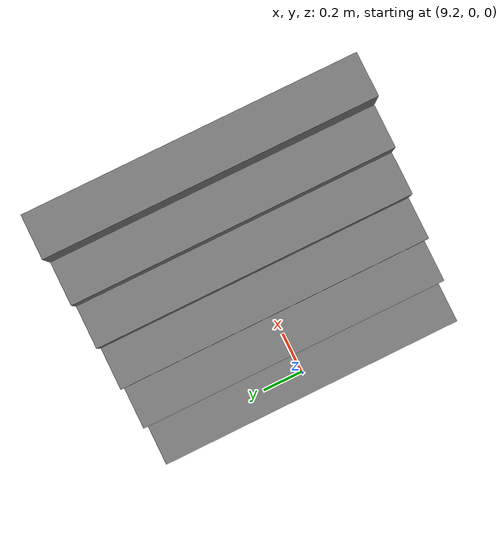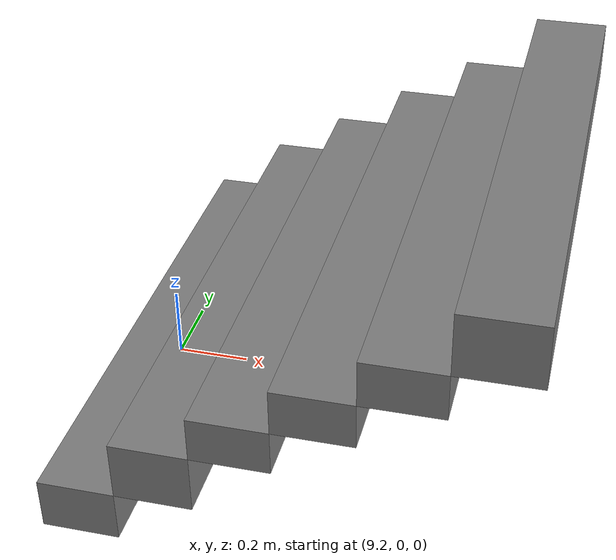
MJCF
<mujoco model="go2 scene">

  <statistic center="0 0 0.1" extent="0.8" />

  <visual>
    <headlight diffuse="0.6 0.6 0.6" ambient="0.3 0.3 0.3" specular="0 0 0" />
    <rgba haze="0.15 0.25 0.35 1" />
    <global azimuth="-130" elevation="-20" />
  </visual>

  <asset>
    <texture type="skybox" builtin="gradient" rgb1="0.3 0.5 0.7" rgb2="0 0 0" width="512" height="3072" />
  </asset>

  <worldbody>
  <geom pos="9.2 0.0 0.07" type="box" size="0.1 0.75 0.07" quat="1.0 0.0 0.0 0.0" /><geom pos="9.4 0.0 0.22000000000000003" type="box" size="0.1 0.75 0.08" quat="1.0 0.0 0.0 0.0" /><geom pos="9.6 0.0 0.36000000000000004" type="box" size="0.1 0.75 0.06" quat="1.0 0.0 0.0 0.0" /><geom pos="9.8 0.0 0.48000000000000004" type="box" size="0.1 0.75 0.06" quat="1.0 0.0 0.0 0.0" /><geom pos="10.0 0.0 0.6000000000000001" type="box" size="0.1 0.75 0.06" quat="1.0 0.0 0.0 0.0" /><geom pos="10.2 0.0 0.7400000000000001" type="box" size="0.1 0.75 0.08" quat="1.0 0.0 0.0 0.0" /></worldbody>
</mujoco>
